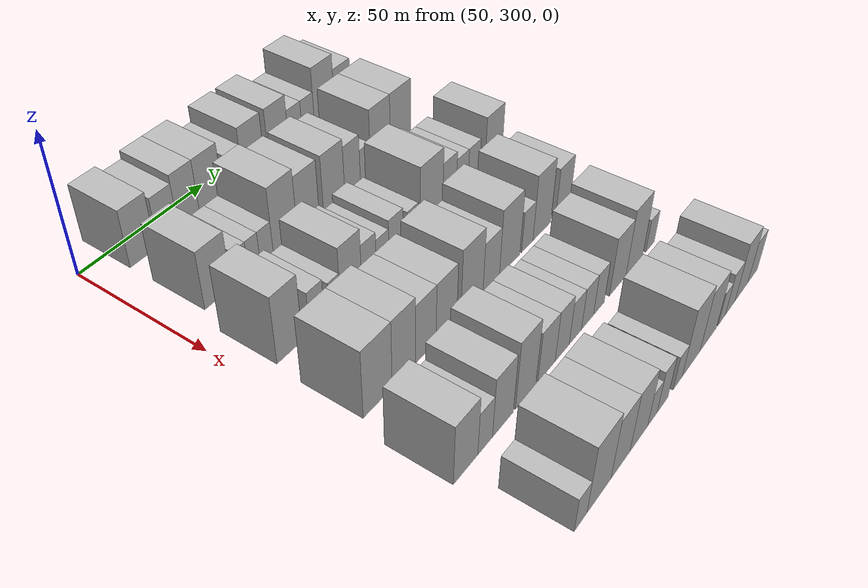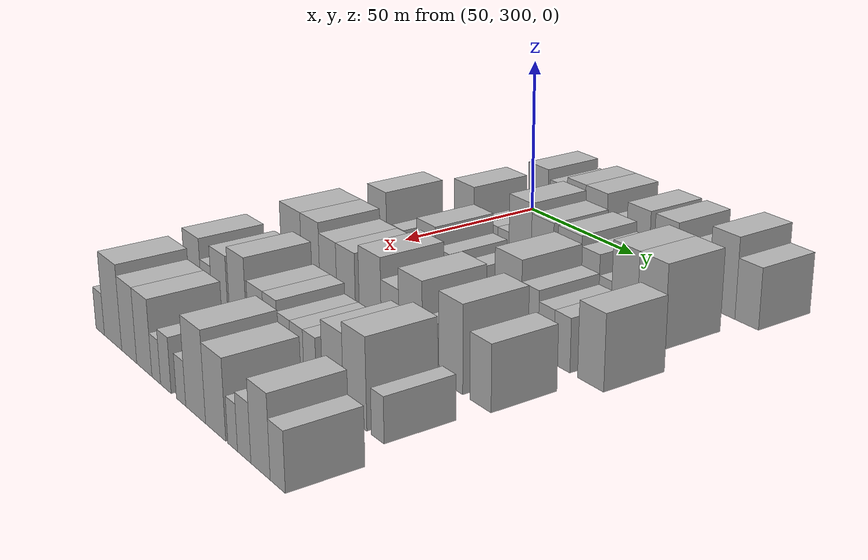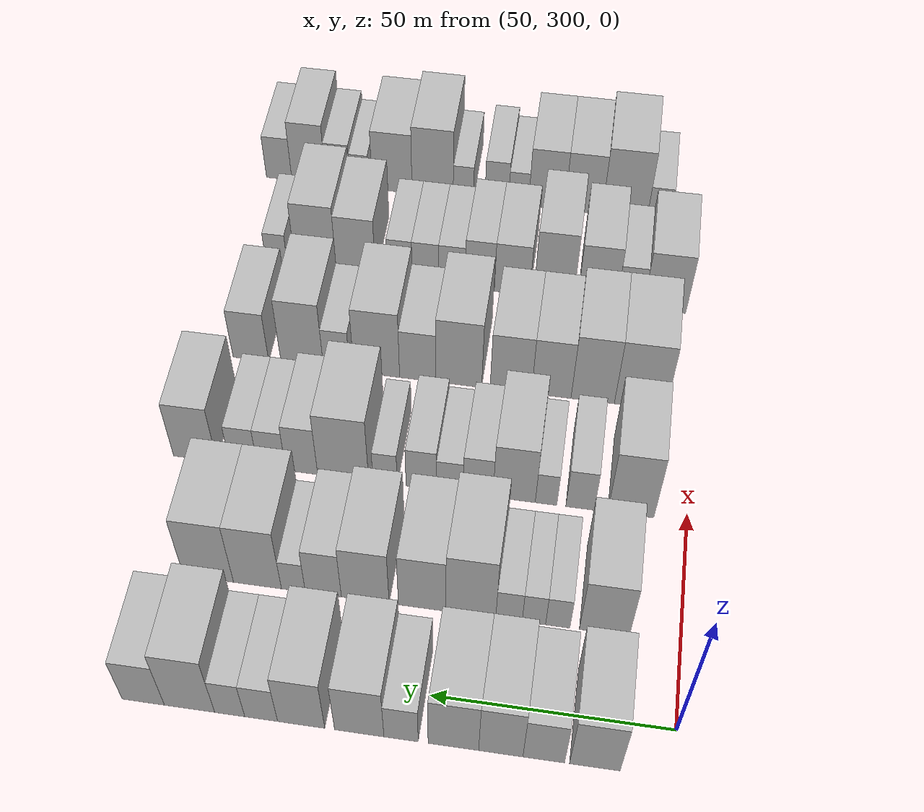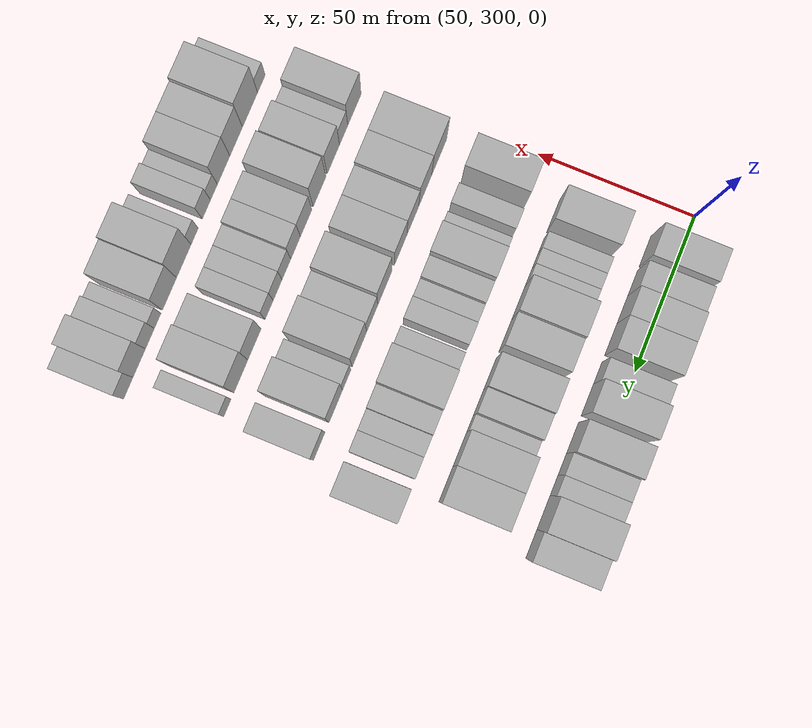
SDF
<sdf version="1.6">
 <world name="default">
  <model name="building_93">
   <static>1</static>
   <pose>50.0000 315.5452 0 0.000000 0.000000 0.000000</pose>
   <link name="link">
    <pose>0 0 10.50 0 0 0</pose>
    <collision name="collision"><geometry><box><size>20.0000 10.0082 21.0000</size></box></geometry></collision>
    <visual name="visual">
     <cast_shadows>0</cast_shadows>
     <geometry><box><size>20.0000 10.0082 21.0000</size></box></geometry>
     <material>
      <script>
       <uri>model://HANNAS_wall/materials/scripts</uri>
       <uri>model://HANNAS_wall/materials/textures</uri>
       <name>vrc/HANNAS_wall</name>
      </script>
     </material>
    </visual>
   </link>
  </model>
  <model name="building_94">
   <static>1</static>
   <pose>50.0000 325.6900 0 0.000000 0.000000 0.000000</pose>
   <link name="link">
    <pose>0 0 9.00 0 0 0</pose>
    <collision name="collision"><geometry><box><size>20.0000 8.2813 18.0000</size></box></geometry></collision>
    <visual name="visual">
     <cast_shadows>0</cast_shadows>
     <geometry><box><size>20.0000 8.2813 18.0000</size></box></geometry>
     <material>
      <script>
       <uri>model://HANNAS_wall/materials/scripts</uri>
       <uri>model://HANNAS_wall/materials/textures</uri>
       <name>vrc/HANNAS_wall</name>
      </script>
     </material>
    </visual>
   </link>
  </model>
  <model name="building_95">
   <static>1</static>
   <pose>50.0000 334.2727 0 0.000000 0.000000 0.000000</pose>
   <link name="link">
    <pose>0 0 10.50 0 0 0</pose>
    <collision name="collision"><geometry><box><size>20.0000 8.8841 21.0000</size></box></geometry></collision>
    <visual name="visual">
     <cast_shadows>0</cast_shadows>
     <geometry><box><size>20.0000 8.8841 21.0000</size></box></geometry>
     <material>
      <script>
       <uri>model://HANNAS_wall/materials/scripts</uri>
       <uri>model://HANNAS_wall/materials/textures</uri>
       <name>vrc/HANNAS_wall</name>
      </script>
     </material>
    </visual>
   </link>
  </model>
  <model name="building_96">
   <static>1</static>
   <pose>50.0000 343.7943 0 0.000000 0.000000 0.000000</pose>
   <link name="link">
    <pose>0 0 10.50 0 0 0</pose>
    <collision name="collision"><geometry><box><size>20.0000 10.1593 21.0000</size></box></geometry></collision>
    <visual name="visual">
     <cast_shadows>0</cast_shadows>
     <geometry><box><size>20.0000 10.1593 21.0000</size></box></geometry>
     <material>
      <script>
       <uri>model://HANNAS_wall/materials/scripts</uri>
       <uri>model://HANNAS_wall/materials/textures</uri>
       <name>vrc/HANNAS_wall</name>
      </script>
     </material>
    </visual>
   </link>
  </model>
  <model name="building_97">
   <static>1</static>
   <pose>50.0000 354.3434 0 0.000000 0.000000 0.000000</pose>
   <link name="link">
    <pose>0 0 7.50 0 0 0</pose>
    <collision name="collision"><geometry><box><size>20.0000 6.9388 15.0000</size></box></geometry></collision>
    <visual name="visual">
     <cast_shadows>0</cast_shadows>
     <geometry><box><size>20.0000 6.9388 15.0000</size></box></geometry>
     <material>
      <script>
       <uri>model://HANNAS_wall/materials/scripts</uri>
       <uri>model://HANNAS_wall/materials/textures</uri>
       <name>vrc/HANNAS_wall</name>
      </script>
     </material>
    </visual>
   </link>
  </model>
  <model name="building_98">
   <static>1</static>
   <pose>50.0000 362.8350 0 0.000000 0.000000 0.000000</pose>
   <link name="link">
    <pose>0 0 10.50 0 0 0</pose>
    <collision name="collision"><geometry><box><size>20.0000 10.0444 21.0000</size></box></geometry></collision>
    <visual name="visual">
     <cast_shadows>0</cast_shadows>
     <geometry><box><size>20.0000 10.0444 21.0000</size></box></geometry>
     <material>
      <script>
       <uri>model://HANNAS_wall/materials/scripts</uri>
       <uri>model://HANNAS_wall/materials/textures</uri>
       <name>vrc/HANNAS_wall</name>
      </script>
     </material>
    </visual>
   </link>
  </model>
  <model name="building_99">
   <static>1</static>
   <pose>50.0000 374.6957 0 0.000000 0.000000 0.000000</pose>
   <link name="link">
    <pose>0 0 10.50 0 0 0</pose>
    <collision name="collision"><geometry><box><size>20.0000 9.6771 21.0000</size></box></geometry></collision>
    <visual name="visual">
     <cast_shadows>0</cast_shadows>
     <geometry><box><size>20.0000 9.6771 21.0000</size></box></geometry>
     <material>
      <script>
       <uri>model://HANNAS_wall/materials/scripts</uri>
       <uri>model://HANNAS_wall/materials/textures</uri>
       <name>vrc/HANNAS_wall</name>
      </script>
     </material>
    </visual>
   </link>
  </model>
  <model name="building_100">
   <static>1</static>
   <pose>50.0000 382.9221 0 0.000000 0.000000 0.000000</pose>
   <link name="link">
    <pose>0 0 7.50 0 0 0</pose>
    <collision name="collision"><geometry><box><size>20.0000 6.7756 15.0000</size></box></geometry></collision>
    <visual name="visual">
     <cast_shadows>0</cast_shadows>
     <geometry><box><size>20.0000 6.7756 15.0000</size></box></geometry>
     <material>
      <script>
       <uri>model://HANNAS_wall/materials/scripts</uri>
       <uri>model://HANNAS_wall/materials/textures</uri>
       <name>vrc/HANNAS_wall</name>
      </script>
     </material>
    </visual>
   </link>
  </model>
  <model name="building_101">
   <static>1</static>
   <pose>50.0000 389.4220 0 0.000000 0.000000 0.000000</pose>
   <link name="link">
    <pose>0 0 7.50 0 0 0</pose>
    <collision name="collision"><geometry><box><size>20.0000 6.2241 15.0000</size></box></geometry></collision>
    <visual name="visual">
     <cast_shadows>0</cast_shadows>
     <geometry><box><size>20.0000 6.2241 15.0000</size></box></geometry>
     <material>
      <script>
       <uri>model://HANNAS_wall/materials/scripts</uri>
       <uri>model://HANNAS_wall/materials/textures</uri>
       <name>vrc/HANNAS_wall</name>
      </script>
     </material>
    </visual>
   </link>
  </model>
  <model name="building_102">
   <static>1</static>
   <pose>50.0000 397.7597 0 0.000000 0.000000 0.000000</pose>
   <link name="link">
    <pose>0 0 12.00 0 0 0</pose>
    <collision name="collision"><geometry><box><size>20.0000 10.4512 24.0000</size></box></geometry></collision>
    <visual name="visual">
     <cast_shadows>0</cast_shadows>
     <geometry><box><size>20.0000 10.4512 24.0000</size></box></geometry>
     <material>
      <script>
       <uri>model://HANNAS_wall/materials/scripts</uri>
       <uri>model://HANNAS_wall/materials/textures</uri>
       <name>vrc/HANNAS_wall</name>
      </script>
     </material>
    </visual>
   </link>
  </model>
  <model name="building_103">
   <static>1</static>
   <pose>50.0000 407.3971 0 0.000000 0.000000 0.000000</pose>
   <link name="link">
    <pose>0 0 9.00 0 0 0</pose>
    <collision name="collision"><geometry><box><size>20.0000 8.8237 18.0000</size></box></geometry></collision>
    <visual name="visual">
     <cast_shadows>0</cast_shadows>
     <geometry><box><size>20.0000 8.8237 18.0000</size></box></geometry>
     <material>
      <script>
       <uri>model://HANNAS_wall/materials/scripts</uri>
       <uri>model://HANNAS_wall/materials/textures</uri>
       <name>vrc/HANNAS_wall</name>
      </script>
     </material>
    </visual>
   </link>
  </model>
  <model name="building_215">
   <static>1</static>
   <pose>79.0000 315.9607 0 0.000000 0.000000 0.000000</pose>
   <link name="link">
    <pose>0 0 10.50 0 0 0</pose>
    <collision name="collision"><geometry><box><size>20.0000 10.4557 21.0000</size></box></geometry></collision>
    <visual name="visual">
     <cast_shadows>0</cast_shadows>
     <geometry><box><size>20.0000 10.4557 21.0000</size></box></geometry>
     <material>
      <script>
       <uri>model://HANNAS_wall/materials/scripts</uri>
       <uri>model://HANNAS_wall/materials/textures</uri>
       <name>vrc/HANNAS_wall</name>
      </script>
     </material>
    </visual>
   </link>
  </model>
  <model name="building_216">
   <static>1</static>
   <pose>79.0000 325.7567 0 0.000000 0.000000 0.000000</pose>
   <link name="link">
    <pose>0 0 6.00 0 0 0</pose>
    <collision name="collision"><geometry><box><size>20.0000 5.1362 12.0000</size></box></geometry></collision>
    <visual name="visual">
     <cast_shadows>0</cast_shadows>
     <geometry><box><size>20.0000 5.1362 12.0000</size></box></geometry>
     <material>
      <script>
       <uri>model://HANNAS_wall/materials/scripts</uri>
       <uri>model://HANNAS_wall/materials/textures</uri>
       <name>vrc/HANNAS_wall</name>
      </script>
     </material>
    </visual>
   </link>
  </model>
  <model name="building_217">
   <static>1</static>
   <pose>79.0000 330.7966 0 0.000000 0.000000 0.000000</pose>
   <link name="link">
    <pose>0 0 6.00 0 0 0</pose>
    <collision name="collision"><geometry><box><size>20.0000 4.9435 12.0000</size></box></geometry></collision>
    <visual name="visual">
     <cast_shadows>0</cast_shadows>
     <geometry><box><size>20.0000 4.9435 12.0000</size></box></geometry>
     <material>
      <script>
       <uri>model://HANNAS_wall/materials/scripts</uri>
       <uri>model://HANNAS_wall/materials/textures</uri>
       <name>vrc/HANNAS_wall</name>
      </script>
     </material>
    </visual>
   </link>
  </model>
  <model name="building_218">
   <static>1</static>
   <pose>79.0000 336.0639 0 0.000000 0.000000 0.000000</pose>
   <link name="link">
    <pose>0 0 6.00 0 0 0</pose>
    <collision name="collision"><geometry><box><size>20.0000 5.5912 12.0000</size></box></geometry></collision>
    <visual name="visual">
     <cast_shadows>0</cast_shadows>
     <geometry><box><size>20.0000 5.5912 12.0000</size></box></geometry>
     <material>
      <script>
       <uri>model://HANNAS_wall/materials/scripts</uri>
       <uri>model://HANNAS_wall/materials/textures</uri>
       <name>vrc/HANNAS_wall</name>
      </script>
     </material>
    </visual>
   </link>
  </model>
  <model name="building_219">
   <static>1</static>
   <pose>79.0000 344.2094 0 0.000000 0.000000 0.000000</pose>
   <link name="link">
    <pose>0 0 12.00 0 0 0</pose>
    <collision name="collision"><geometry><box><size>20.0000 10.6997 24.0000</size></box></geometry></collision>
    <visual name="visual">
     <cast_shadows>0</cast_shadows>
     <geometry><box><size>20.0000 10.6997 24.0000</size></box></geometry>
     <material>
      <script>
       <uri>model://HANNAS_wall/materials/scripts</uri>
       <uri>model://HANNAS_wall/materials/textures</uri>
       <name>vrc/HANNAS_wall</name>
      </script>
     </material>
    </visual>
   </link>
  </model>
  <model name="building_220">
   <static>1</static>
   <pose>79.0000 354.5981 0 0.000000 0.000000 0.000000</pose>
   <link name="link">
    <pose>0 0 10.50 0 0 0</pose>
    <collision name="collision"><geometry><box><size>20.0000 10.0776 21.0000</size></box></geometry></collision>
    <visual name="visual">
     <cast_shadows>0</cast_shadows>
     <geometry><box><size>20.0000 10.0776 21.0000</size></box></geometry>
     <material>
      <script>
       <uri>model://HANNAS_wall/materials/scripts</uri>
       <uri>model://HANNAS_wall/materials/textures</uri>
       <name>vrc/HANNAS_wall</name>
      </script>
     </material>
    </visual>
   </link>
  </model>
  <model name="building_221">
   <static>1</static>
   <pose>79.0000 366.7834 0 0.000000 0.000000 0.000000</pose>
   <link name="link">
    <pose>0 0 10.50 0 0 0</pose>
    <collision name="collision"><geometry><box><size>20.0000 10.2931 21.0000</size></box></geometry></collision>
    <visual name="visual">
     <cast_shadows>0</cast_shadows>
     <geometry><box><size>20.0000 10.2931 21.0000</size></box></geometry>
     <material>
      <script>
       <uri>model://HANNAS_wall/materials/scripts</uri>
       <uri>model://HANNAS_wall/materials/textures</uri>
       <name>vrc/HANNAS_wall</name>
      </script>
     </material>
    </visual>
   </link>
  </model>
  <model name="building_222">
   <static>1</static>
   <pose>79.0000 375.8304 0 0.000000 0.000000 0.000000</pose>
   <link name="link">
    <pose>0 0 9.00 0 0 0</pose>
    <collision name="collision"><geometry><box><size>20.0000 7.8008 18.0000</size></box></geometry></collision>
    <visual name="visual">
     <cast_shadows>0</cast_shadows>
     <geometry><box><size>20.0000 7.8008 18.0000</size></box></geometry>
     <material>
      <script>
       <uri>model://HANNAS_wall/materials/scripts</uri>
       <uri>model://HANNAS_wall/materials/textures</uri>
       <name>vrc/HANNAS_wall</name>
      </script>
     </material>
    </visual>
   </link>
  </model>
  <model name="building_223">
   <static>1</static>
   <pose>79.0000 382.3378 0 0.000000 0.000000 0.000000</pose>
   <link name="link">
    <pose>0 0 6.00 0 0 0</pose>
    <collision name="collision"><geometry><box><size>20.0000 5.2142 12.0000</size></box></geometry></collision>
    <visual name="visual">
     <cast_shadows>0</cast_shadows>
     <geometry><box><size>20.0000 5.2142 12.0000</size></box></geometry>
     <material>
      <script>
       <uri>model://HANNAS_wall/materials/scripts</uri>
       <uri>model://HANNAS_wall/materials/textures</uri>
       <name>vrc/HANNAS_wall</name>
      </script>
     </material>
    </visual>
   </link>
  </model>
  <model name="building_224">
   <static>1</static>
   <pose>79.0000 390.1889 0 0.000000 0.000000 0.000000</pose>
   <link name="link">
    <pose>0 0 12.00 0 0 0</pose>
    <collision name="collision"><geometry><box><size>20.0000 10.4879 24.0000</size></box></geometry></collision>
    <visual name="visual">
     <cast_shadows>0</cast_shadows>
     <geometry><box><size>20.0000 10.4879 24.0000</size></box></geometry>
     <material>
      <script>
       <uri>model://HANNAS_wall/materials/scripts</uri>
       <uri>model://HANNAS_wall/materials/textures</uri>
       <name>vrc/HANNAS_wall</name>
      </script>
     </material>
    </visual>
   </link>
  </model>
  <model name="building_225">
   <static>1</static>
   <pose>79.0000 400.9371 0 0.000000 0.000000 0.000000</pose>
   <link name="link">
    <pose>0 0 12.00 0 0 0</pose>
    <collision name="collision"><geometry><box><size>20.0000 11.0085 24.0000</size></box></geometry></collision>
    <visual name="visual">
     <cast_shadows>0</cast_shadows>
     <geometry><box><size>20.0000 11.0085 24.0000</size></box></geometry>
     <material>
      <script>
       <uri>model://HANNAS_wall/materials/scripts</uri>
       <uri>model://HANNAS_wall/materials/textures</uri>
       <name>vrc/HANNAS_wall</name>
      </script>
     </material>
    </visual>
   </link>
  </model>
  <model name="building_333">
   <static>1</static>
   <pose>108.0000 312.4085 0 0.000000 0.000000 0.000000</pose>
   <link name="link">
    <pose>0 0 12.00 0 0 0</pose>
    <collision name="collision"><geometry><box><size>20.0000 10.1670 24.0000</size></box></geometry></collision>
    <visual name="visual">
     <cast_shadows>0</cast_shadows>
     <geometry><box><size>20.0000 10.1670 24.0000</size></box></geometry>
     <material>
      <script>
       <uri>model://HANNAS_wall/materials/scripts</uri>
       <uri>model://HANNAS_wall/materials/textures</uri>
       <name>vrc/HANNAS_wall</name>
      </script>
     </material>
    </visual>
   </link>
  </model>
  <model name="building_334">
   <static>1</static>
   <pose>108.0000 323.6455 0 0.000000 0.000000 0.000000</pose>
   <link name="link">
    <pose>0 0 7.50 0 0 0</pose>
    <collision name="collision"><geometry><box><size>20.0000 6.3069 15.0000</size></box></geometry></collision>
    <visual name="visual">
     <cast_shadows>0</cast_shadows>
     <geometry><box><size>20.0000 6.3069 15.0000</size></box></geometry>
     <material>
      <script>
       <uri>model://HANNAS_wall/materials/scripts</uri>
       <uri>model://HANNAS_wall/materials/textures</uri>
       <name>vrc/HANNAS_wall</name>
      </script>
     </material>
    </visual>
   </link>
  </model>
  <model name="building_335">
   <static>1</static>
   <pose>108.0000 331.2059 0 0.000000 0.000000 0.000000</pose>
   <link name="link">
    <pose>0 0 6.00 0 0 0</pose>
    <collision name="collision"><geometry><box><size>20.0000 4.8141 12.0000</size></box></geometry></collision>
    <visual name="visual">
     <cast_shadows>0</cast_shadows>
     <geometry><box><size>20.0000 4.8141 12.0000</size></box></geometry>
     <material>
      <script>
       <uri>model://HANNAS_wall/materials/scripts</uri>
       <uri>model://HANNAS_wall/materials/textures</uri>
       <name>vrc/HANNAS_wall</name>
      </script>
     </material>
    </visual>
   </link>
  </model>
  <model name="building_336">
   <static>1</static>
   <pose>108.0000 338.3489 0 0.000000 0.000000 0.000000</pose>
   <link name="link">
    <pose>0 0 10.50 0 0 0</pose>
    <collision name="collision"><geometry><box><size>20.0000 9.4719 21.0000</size></box></geometry></collision>
    <visual name="visual">
     <cast_shadows>0</cast_shadows>
     <geometry><box><size>20.0000 9.4719 21.0000</size></box></geometry>
     <material>
      <script>
       <uri>model://HANNAS_wall/materials/scripts</uri>
       <uri>model://HANNAS_wall/materials/textures</uri>
       <name>vrc/HANNAS_wall</name>
      </script>
     </material>
    </visual>
   </link>
  </model>
  <model name="building_337">
   <static>1</static>
   <pose>108.0000 346.4633 0 0.000000 0.000000 0.000000</pose>
   <link name="link">
    <pose>0 0 7.50 0 0 0</pose>
    <collision name="collision"><geometry><box><size>20.0000 6.7568 15.0000</size></box></geometry></collision>
    <visual name="visual">
     <cast_shadows>0</cast_shadows>
     <geometry><box><size>20.0000 6.7568 15.0000</size></box></geometry>
     <material>
      <script>
       <uri>model://HANNAS_wall/materials/scripts</uri>
       <uri>model://HANNAS_wall/materials/textures</uri>
       <name>vrc/HANNAS_wall</name>
      </script>
     </material>
    </visual>
   </link>
  </model>
  <model name="building_338">
   <static>1</static>
   <pose>108.0000 352.8223 0 0.000000 0.000000 0.000000</pose>
   <link name="link">
    <pose>0 0 6.00 0 0 0</pose>
    <collision name="collision"><geometry><box><size>20.0000 5.9613 12.0000</size></box></geometry></collision>
    <visual name="visual">
     <cast_shadows>0</cast_shadows>
     <geometry><box><size>20.0000 5.9613 12.0000</size></box></geometry>
     <material>
      <script>
       <uri>model://HANNAS_wall/materials/scripts</uri>
       <uri>model://HANNAS_wall/materials/textures</uri>
       <name>vrc/HANNAS_wall</name>
      </script>
     </material>
    </visual>
   </link>
  </model>
  <model name="building_339">
   <static>1</static>
   <pose>108.0000 359.2395 0 0.000000 0.000000 0.000000</pose>
   <link name="link">
    <pose>0 0 7.50 0 0 0</pose>
    <collision name="collision"><geometry><box><size>20.0000 6.8731 15.0000</size></box></geometry></collision>
    <visual name="visual">
     <cast_shadows>0</cast_shadows>
     <geometry><box><size>20.0000 6.8731 15.0000</size></box></geometry>
     <material>
      <script>
       <uri>model://HANNAS_wall/materials/scripts</uri>
       <uri>model://HANNAS_wall/materials/textures</uri>
       <name>vrc/HANNAS_wall</name>
      </script>
     </material>
    </visual>
   </link>
  </model>
  <model name="building_340">
   <static>1</static>
   <pose>108.0000 367.4224 0 0.000000 0.000000 0.000000</pose>
   <link name="link">
    <pose>0 0 6.00 0 0 0</pose>
    <collision name="collision"><geometry><box><size>20.0000 5.4927 12.0000</size></box></geometry></collision>
    <visual name="visual">
     <cast_shadows>0</cast_shadows>
     <geometry><box><size>20.0000 5.4927 12.0000</size></box></geometry>
     <material>
      <script>
       <uri>model://HANNAS_wall/materials/scripts</uri>
       <uri>model://HANNAS_wall/materials/textures</uri>
       <name>vrc/HANNAS_wall</name>
      </script>
     </material>
    </visual>
   </link>
  </model>
  <model name="building_341">
   <static>1</static>
   <pose>108.0000 376.9942 0 0.000000 0.000000 0.000000</pose>
   <link name="link">
    <pose>0 0 12.00 0 0 0</pose>
    <collision name="collision"><geometry><box><size>20.0000 11.6511 24.0000</size></box></geometry></collision>
    <visual name="visual">
     <cast_shadows>0</cast_shadows>
     <geometry><box><size>20.0000 11.6511 24.0000</size></box></geometry>
     <material>
      <script>
       <uri>model://HANNAS_wall/materials/scripts</uri>
       <uri>model://HANNAS_wall/materials/textures</uri>
       <name>vrc/HANNAS_wall</name>
      </script>
     </material>
    </visual>
   </link>
  </model>
  <model name="building_342">
   <static>1</static>
   <pose>108.0000 386.4599 0 0.000000 0.000000 0.000000</pose>
   <link name="link">
    <pose>0 0 9.00 0 0 0</pose>
    <collision name="collision"><geometry><box><size>20.0000 7.2802 18.0000</size></box></geometry></collision>
    <visual name="visual">
     <cast_shadows>0</cast_shadows>
     <geometry><box><size>20.0000 7.2802 18.0000</size></box></geometry>
     <material>
      <script>
       <uri>model://HANNAS_wall/materials/scripts</uri>
       <uri>model://HANNAS_wall/materials/textures</uri>
       <name>vrc/HANNAS_wall</name>
      </script>
     </material>
    </visual>
   </link>
  </model>
  <model name="building_343">
   <static>1</static>
   <pose>108.0000 393.3609 0 0.000000 0.000000 0.000000</pose>
   <link name="link">
    <pose>0 0 7.50 0 0 0</pose>
    <collision name="collision"><geometry><box><size>20.0000 6.5218 15.0000</size></box></geometry></collision>
    <visual name="visual">
     <cast_shadows>0</cast_shadows>
     <geometry><box><size>20.0000 6.5218 15.0000</size></box></geometry>
     <material>
      <script>
       <uri>model://HANNAS_wall/materials/scripts</uri>
       <uri>model://HANNAS_wall/materials/textures</uri>
       <name>vrc/HANNAS_wall</name>
      </script>
     </material>
    </visual>
   </link>
  </model>
  <model name="building_344">
   <static>1</static>
   <pose>108.0000 399.8630 0 0.000000 0.000000 0.000000</pose>
   <link name="link">
    <pose>0 0 7.50 0 0 0</pose>
    <collision name="collision"><geometry><box><size>20.0000 6.4825 15.0000</size></box></geometry></collision>
    <visual name="visual">
     <cast_shadows>0</cast_shadows>
     <geometry><box><size>20.0000 6.4825 15.0000</size></box></geometry>
     <material>
      <script>
       <uri>model://HANNAS_wall/materials/scripts</uri>
       <uri>model://HANNAS_wall/materials/textures</uri>
       <name>vrc/HANNAS_wall</name>
      </script>
     </material>
    </visual>
   </link>
  </model>
  <model name="building_345">
   <static>1</static>
   <pose>108.0000 411.1300 0 0.000000 0.000000 0.000000</pose>
   <link name="link">
    <pose>0 0 10.50 0 0 0</pose>
    <collision name="collision"><geometry><box><size>20.0000 10.0515 21.0000</size></box></geometry></collision>
    <visual name="visual">
     <cast_shadows>0</cast_shadows>
     <geometry><box><size>20.0000 10.0515 21.0000</size></box></geometry>
     <material>
      <script>
       <uri>model://HANNAS_wall/materials/scripts</uri>
       <uri>model://HANNAS_wall/materials/textures</uri>
       <name>vrc/HANNAS_wall</name>
      </script>
     </material>
    </visual>
   </link>
  </model>
  <model name="building_447">
   <static>1</static>
   <pose>137.0000 312.2363 0 0.000000 0.000000 0.000000</pose>
   <link name="link">
    <pose>0 0 12.00 0 0 0</pose>
    <collision name="collision"><geometry><box><size>20.0000 11.9611 24.0000</size></box></geometry></collision>
    <visual name="visual">
     <cast_shadows>0</cast_shadows>
     <geometry><box><size>20.0000 11.9611 24.0000</size></box></geometry>
     <material>
      <script>
       <uri>model://HANNAS_wall/materials/scripts</uri>
       <uri>model://HANNAS_wall/materials/textures</uri>
       <name>vrc/HANNAS_wall</name>
      </script>
     </material>
    </visual>
   </link>
  </model>
  <model name="building_448">
   <static>1</static>
   <pose>137.0000 323.2850 0 0.000000 0.000000 0.000000</pose>
   <link name="link">
    <pose>0 0 12.00 0 0 0</pose>
    <collision name="collision"><geometry><box><size>20.0000 10.1364 24.0000</size></box></geometry></collision>
    <visual name="visual">
     <cast_shadows>0</cast_shadows>
     <geometry><box><size>20.0000 10.1364 24.0000</size></box></geometry>
     <material>
      <script>
       <uri>model://HANNAS_wall/materials/scripts</uri>
       <uri>model://HANNAS_wall/materials/textures</uri>
       <name>vrc/HANNAS_wall</name>
      </script>
     </material>
    </visual>
   </link>
  </model>
  <model name="building_449">
   <static>1</static>
   <pose>137.0000 332.9800 0 0.000000 0.000000 0.000000</pose>
   <link name="link">
    <pose>0 0 10.50 0 0 0</pose>
    <collision name="collision"><geometry><box><size>20.0000 9.2535 21.0000</size></box></geometry></collision>
    <visual name="visual">
     <cast_shadows>0</cast_shadows>
     <geometry><box><size>20.0000 9.2535 21.0000</size></box></geometry>
     <material>
      <script>
       <uri>model://HANNAS_wall/materials/scripts</uri>
       <uri>model://HANNAS_wall/materials/textures</uri>
       <name>vrc/HANNAS_wall</name>
      </script>
     </material>
    </visual>
   </link>
  </model>
  <model name="building_450">
   <static>1</static>
   <pose>137.0000 342.4957 0 0.000000 0.000000 0.000000</pose>
   <link name="link">
    <pose>0 0 10.50 0 0 0</pose>
    <collision name="collision"><geometry><box><size>20.0000 9.7778 21.0000</size></box></geometry></collision>
    <visual name="visual">
     <cast_shadows>0</cast_shadows>
     <geometry><box><size>20.0000 9.7778 21.0000</size></box></geometry>
     <material>
      <script>
       <uri>model://HANNAS_wall/materials/scripts</uri>
       <uri>model://HANNAS_wall/materials/textures</uri>
       <name>vrc/HANNAS_wall</name>
      </script>
     </material>
    </visual>
   </link>
  </model>
  <model name="building_451">
   <static>1</static>
   <pose>137.0000 354.8757 0 0.000000 0.000000 0.000000</pose>
   <link name="link">
    <pose>0 0 12.00 0 0 0</pose>
    <collision name="collision"><geometry><box><size>20.0000 10.9823 24.0000</size></box></geometry></collision>
    <visual name="visual">
     <cast_shadows>0</cast_shadows>
     <geometry><box><size>20.0000 10.9823 24.0000</size></box></geometry>
     <material>
      <script>
       <uri>model://HANNAS_wall/materials/scripts</uri>
       <uri>model://HANNAS_wall/materials/textures</uri>
       <name>vrc/HANNAS_wall</name>
      </script>
     </material>
    </visual>
   </link>
  </model>
  <model name="building_452">
   <static>1</static>
   <pose>137.0000 364.6309 0 0.000000 0.000000 0.000000</pose>
   <link name="link">
    <pose>0 0 9.00 0 0 0</pose>
    <collision name="collision"><geometry><box><size>20.0000 8.5280 18.0000</size></box></geometry></collision>
    <visual name="visual">
     <cast_shadows>0</cast_shadows>
     <geometry><box><size>20.0000 8.5280 18.0000</size></box></geometry>
     <material>
      <script>
       <uri>model://HANNAS_wall/materials/scripts</uri>
       <uri>model://HANNAS_wall/materials/textures</uri>
       <name>vrc/HANNAS_wall</name>
      </script>
     </material>
    </visual>
   </link>
  </model>
  <model name="building_453">
   <static>1</static>
   <pose>137.0000 374.3657 0 0.000000 0.000000 0.000000</pose>
   <link name="link">
    <pose>0 0 12.00 0 0 0</pose>
    <collision name="collision"><geometry><box><size>20.0000 10.9418 24.0000</size></box></geometry></collision>
    <visual name="visual">
     <cast_shadows>0</cast_shadows>
     <geometry><box><size>20.0000 10.9418 24.0000</size></box></geometry>
     <material>
      <script>
       <uri>model://HANNAS_wall/materials/scripts</uri>
       <uri>model://HANNAS_wall/materials/textures</uri>
       <name>vrc/HANNAS_wall</name>
      </script>
     </material>
    </visual>
   </link>
  </model>
  <model name="building_454">
   <static>1</static>
   <pose>137.0000 384.0002 0 0.000000 0.000000 0.000000</pose>
   <link name="link">
    <pose>0 0 7.50 0 0 0</pose>
    <collision name="collision"><geometry><box><size>20.0000 6.3272 15.0000</size></box></geometry></collision>
    <visual name="visual">
     <cast_shadows>0</cast_shadows>
     <geometry><box><size>20.0000 6.3272 15.0000</size></box></geometry>
     <material>
      <script>
       <uri>model://HANNAS_wall/materials/scripts</uri>
       <uri>model://HANNAS_wall/materials/textures</uri>
       <name>vrc/HANNAS_wall</name>
      </script>
     </material>
    </visual>
   </link>
  </model>
  <model name="building_455">
   <static>1</static>
   <pose>137.0000 392.2985 0 0.000000 0.000000 0.000000</pose>
   <link name="link">
    <pose>0 0 12.00 0 0 0</pose>
    <collision name="collision"><geometry><box><size>20.0000 10.2693 24.0000</size></box></geometry></collision>
    <visual name="visual">
     <cast_shadows>0</cast_shadows>
     <geometry><box><size>20.0000 10.2693 24.0000</size></box></geometry>
     <material>
      <script>
       <uri>model://HANNAS_wall/materials/scripts</uri>
       <uri>model://HANNAS_wall/materials/textures</uri>
       <name>vrc/HANNAS_wall</name>
      </script>
     </material>
    </visual>
   </link>
  </model>
  <model name="building_456">
   <static>1</static>
   <pose>137.0000 404.7795 0 0.000000 0.000000 0.000000</pose>
   <link name="link">
    <pose>0 0 9.00 0 0 0</pose>
    <collision name="collision"><geometry><box><size>20.0000 8.6927 18.0000</size></box></geometry></collision>
    <visual name="visual">
     <cast_shadows>0</cast_shadows>
     <geometry><box><size>20.0000 8.6927 18.0000</size></box></geometry>
     <material>
      <script>
       <uri>model://HANNAS_wall/materials/scripts</uri>
       <uri>model://HANNAS_wall/materials/textures</uri>
       <name>vrc/HANNAS_wall</name>
      </script>
     </material>
    </visual>
   </link>
  </model>
  <model name="building_563">
   <static>1</static>
   <pose>166.0000 308.1967 0 0.000000 0.000000 0.000000</pose>
   <link name="link">
    <pose>0 0 10.50 0 0 0</pose>
    <collision name="collision"><geometry><box><size>20.0000 10.3828 21.0000</size></box></geometry></collision>
    <visual name="visual">
     <cast_shadows>0</cast_shadows>
     <geometry><box><size>20.0000 10.3828 21.0000</size></box></geometry>
     <material>
      <script>
       <uri>model://HANNAS_wall/materials/scripts</uri>
       <uri>model://HANNAS_wall/materials/textures</uri>
       <name>vrc/HANNAS_wall</name>
      </script>
     </material>
    </visual>
   </link>
  </model>
  <model name="building_564">
   <static>1</static>
   <pose>166.0000 316.6407 0 0.000000 0.000000 0.000000</pose>
   <link name="link">
    <pose>0 0 7.50 0 0 0</pose>
    <collision name="collision"><geometry><box><size>20.0000 6.5051 15.0000</size></box></geometry></collision>
    <visual name="visual">
     <cast_shadows>0</cast_shadows>
     <geometry><box><size>20.0000 6.5051 15.0000</size></box></geometry>
     <material>
      <script>
       <uri>model://HANNAS_wall/materials/scripts</uri>
       <uri>model://HANNAS_wall/materials/textures</uri>
       <name>vrc/HANNAS_wall</name>
      </script>
     </material>
    </visual>
   </link>
  </model>
  <model name="building_565">
   <static>1</static>
   <pose>166.0000 324.6711 0 0.000000 0.000000 0.000000</pose>
   <link name="link">
    <pose>0 0 10.50 0 0 0</pose>
    <collision name="collision"><geometry><box><size>20.0000 9.5557 21.0000</size></box></geometry></collision>
    <visual name="visual">
     <cast_shadows>0</cast_shadows>
     <geometry><box><size>20.0000 9.5557 21.0000</size></box></geometry>
     <material>
      <script>
       <uri>model://HANNAS_wall/materials/scripts</uri>
       <uri>model://HANNAS_wall/materials/textures</uri>
       <name>vrc/HANNAS_wall</name>
      </script>
     </material>
    </visual>
   </link>
  </model>
  <model name="building_566">
   <static>1</static>
   <pose>166.0000 335.3377 0 0.000000 0.000000 0.000000</pose>
   <link name="link">
    <pose>0 0 12.00 0 0 0</pose>
    <collision name="collision"><geometry><box><size>20.0000 9.7774 24.0000</size></box></geometry></collision>
    <visual name="visual">
     <cast_shadows>0</cast_shadows>
     <geometry><box><size>20.0000 9.7774 24.0000</size></box></geometry>
     <material>
      <script>
       <uri>model://HANNAS_wall/materials/scripts</uri>
       <uri>model://HANNAS_wall/materials/textures</uri>
       <name>vrc/HANNAS_wall</name>
      </script>
     </material>
    </visual>
   </link>
  </model>
  <model name="building_567">
   <static>1</static>
   <pose>166.0000 345.6106 0 0.000000 0.000000 0.000000</pose>
   <link name="link">
    <pose>0 0 9.00 0 0 0</pose>
    <collision name="collision"><geometry><box><size>20.0000 8.7684 18.0000</size></box></geometry></collision>
    <visual name="visual">
     <cast_shadows>0</cast_shadows>
     <geometry><box><size>20.0000 8.7684 18.0000</size></box></geometry>
     <material>
      <script>
       <uri>model://HANNAS_wall/materials/scripts</uri>
       <uri>model://HANNAS_wall/materials/textures</uri>
       <name>vrc/HANNAS_wall</name>
      </script>
     </material>
    </visual>
   </link>
  </model>
  <model name="building_568">
   <static>1</static>
   <pose>166.0000 353.6458 0 0.000000 0.000000 0.000000</pose>
   <link name="link">
    <pose>0 0 9.00 0 0 0</pose>
    <collision name="collision"><geometry><box><size>20.0000 7.3021 18.0000</size></box></geometry></collision>
    <visual name="visual">
     <cast_shadows>0</cast_shadows>
     <geometry><box><size>20.0000 7.3021 18.0000</size></box></geometry>
     <material>
      <script>
       <uri>model://HANNAS_wall/materials/scripts</uri>
       <uri>model://HANNAS_wall/materials/textures</uri>
       <name>vrc/HANNAS_wall</name>
      </script>
     </material>
    </visual>
   </link>
  </model>
  <model name="building_569">
   <static>1</static>
   <pose>166.0000 360.6120 0 0.000000 0.000000 0.000000</pose>
   <link name="link">
    <pose>0 0 7.50 0 0 0</pose>
    <collision name="collision"><geometry><box><size>20.0000 6.6303 15.0000</size></box></geometry></collision>
    <visual name="visual">
     <cast_shadows>0</cast_shadows>
     <geometry><box><size>20.0000 6.6303 15.0000</size></box></geometry>
     <material>
      <script>
       <uri>model://HANNAS_wall/materials/scripts</uri>
       <uri>model://HANNAS_wall/materials/textures</uri>
       <name>vrc/HANNAS_wall</name>
      </script>
     </material>
    </visual>
   </link>
  </model>
  <model name="building_570">
   <static>1</static>
   <pose>166.0000 367.2481 0 0.000000 0.000000 0.000000</pose>
   <link name="link">
    <pose>0 0 7.50 0 0 0</pose>
    <collision name="collision"><geometry><box><size>20.0000 6.6420 15.0000</size></box></geometry></collision>
    <visual name="visual">
     <cast_shadows>0</cast_shadows>
     <geometry><box><size>20.0000 6.6420 15.0000</size></box></geometry>
     <material>
      <script>
       <uri>model://HANNAS_wall/materials/scripts</uri>
       <uri>model://HANNAS_wall/materials/textures</uri>
       <name>vrc/HANNAS_wall</name>
      </script>
     </material>
    </visual>
   </link>
  </model>
  <model name="building_571">
   <static>1</static>
   <pose>166.0000 373.6368 0 0.000000 0.000000 0.000000</pose>
   <link name="link">
    <pose>0 0 7.50 0 0 0</pose>
    <collision name="collision"><geometry><box><size>20.0000 6.1354 15.0000</size></box></geometry></collision>
    <visual name="visual">
     <cast_shadows>0</cast_shadows>
     <geometry><box><size>20.0000 6.1354 15.0000</size></box></geometry>
     <material>
      <script>
       <uri>model://HANNAS_wall/materials/scripts</uri>
       <uri>model://HANNAS_wall/materials/textures</uri>
       <name>vrc/HANNAS_wall</name>
      </script>
     </material>
    </visual>
   </link>
  </model>
  <model name="building_572">
   <static>1</static>
   <pose>166.0000 384.6266 0 0.000000 0.000000 0.000000</pose>
   <link name="link">
    <pose>0 0 10.50 0 0 0</pose>
    <collision name="collision"><geometry><box><size>20.0000 9.8442 21.0000</size></box></geometry></collision>
    <visual name="visual">
     <cast_shadows>0</cast_shadows>
     <geometry><box><size>20.0000 9.8442 21.0000</size></box></geometry>
     <material>
      <script>
       <uri>model://HANNAS_wall/materials/scripts</uri>
       <uri>model://HANNAS_wall/materials/textures</uri>
       <name>vrc/HANNAS_wall</name>
      </script>
     </material>
    </visual>
   </link>
  </model>
  <model name="building_573">
   <static>1</static>
   <pose>166.0000 394.7525 0 0.000000 0.000000 0.000000</pose>
   <link name="link">
    <pose>0 0 12.00 0 0 0</pose>
    <collision name="collision"><geometry><box><size>20.0000 10.4075 24.0000</size></box></geometry></collision>
    <visual name="visual">
     <cast_shadows>0</cast_shadows>
     <geometry><box><size>20.0000 10.4075 24.0000</size></box></geometry>
     <material>
      <script>
       <uri>model://HANNAS_wall/materials/scripts</uri>
       <uri>model://HANNAS_wall/materials/textures</uri>
       <name>vrc/HANNAS_wall</name>
      </script>
     </material>
    </visual>
   </link>
  </model>
  <model name="building_574">
   <static>1</static>
   <pose>166.0000 404.6862 0 0.000000 0.000000 0.000000</pose>
   <link name="link">
    <pose>0 0 6.00 0 0 0</pose>
    <collision name="collision"><geometry><box><size>20.0000 5.4600 12.0000</size></box></geometry></collision>
    <visual name="visual">
     <cast_shadows>0</cast_shadows>
     <geometry><box><size>20.0000 5.4600 12.0000</size></box></geometry>
     <material>
      <script>
       <uri>model://HANNAS_wall/materials/scripts</uri>
       <uri>model://HANNAS_wall/materials/textures</uri>
       <name>vrc/HANNAS_wall</name>
      </script>
     </material>
    </visual>
   </link>
  </model>
  <model name="building_674">
   <static>1</static>
   <pose>195.0000 311.3128 0 0.000000 0.000000 0.000000</pose>
   <link name="link">
    <pose>0 0 6.00 0 0 0</pose>
    <collision name="collision"><geometry><box><size>20.0000 5.8493 12.0000</size></box></geometry></collision>
    <visual name="visual">
     <cast_shadows>0</cast_shadows>
     <geometry><box><size>20.0000 5.8493 12.0000</size></box></geometry>
     <material>
      <script>
       <uri>model://HANNAS_wall/materials/scripts</uri>
       <uri>model://HANNAS_wall/materials/textures</uri>
       <name>vrc/HANNAS_wall</name>
      </script>
     </material>
    </visual>
   </link>
  </model>
  <model name="building_675">
   <static>1</static>
   <pose>195.0000 320.0159 0 0.000000 0.000000 0.000000</pose>
   <link name="link">
    <pose>0 0 12.00 0 0 0</pose>
    <collision name="collision"><geometry><box><size>20.0000 11.5569 24.0000</size></box></geometry></collision>
    <visual name="visual">
     <cast_shadows>0</cast_shadows>
     <geometry><box><size>20.0000 11.5569 24.0000</size></box></geometry>
     <material>
      <script>
       <uri>model://HANNAS_wall/materials/scripts</uri>
       <uri>model://HANNAS_wall/materials/textures</uri>
       <name>vrc/HANNAS_wall</name>
      </script>
     </material>
    </visual>
   </link>
  </model>
  <model name="building_676">
   <static>1</static>
   <pose>195.0000 330.5916 0 0.000000 0.000000 0.000000</pose>
   <link name="link">
    <pose>0 0 10.50 0 0 0</pose>
    <collision name="collision"><geometry><box><size>20.0000 9.5944 21.0000</size></box></geometry></collision>
    <visual name="visual">
     <cast_shadows>0</cast_shadows>
     <geometry><box><size>20.0000 9.5944 21.0000</size></box></geometry>
     <material>
      <script>
       <uri>model://HANNAS_wall/materials/scripts</uri>
       <uri>model://HANNAS_wall/materials/textures</uri>
       <name>vrc/HANNAS_wall</name>
      </script>
     </material>
    </visual>
   </link>
  </model>
  <model name="building_677">
   <static>1</static>
   <pose>195.0000 340.0651 0 0.000000 0.000000 0.000000</pose>
   <link name="link">
    <pose>0 0 10.50 0 0 0</pose>
    <collision name="collision"><geometry><box><size>20.0000 9.3525 21.0000</size></box></geometry></collision>
    <visual name="visual">
     <cast_shadows>0</cast_shadows>
     <geometry><box><size>20.0000 9.3525 21.0000</size></box></geometry>
     <material>
      <script>
       <uri>model://HANNAS_wall/materials/scripts</uri>
       <uri>model://HANNAS_wall/materials/textures</uri>
       <name>vrc/HANNAS_wall</name>
      </script>
     </material>
    </visual>
   </link>
  </model>
  <model name="building_678">
   <static>1</static>
   <pose>195.0000 347.3329 0 0.000000 0.000000 0.000000</pose>
   <link name="link">
    <pose>0 0 6.00 0 0 0</pose>
    <collision name="collision"><geometry><box><size>20.0000 5.1830 12.0000</size></box></geometry></collision>
    <visual name="visual">
     <cast_shadows>0</cast_shadows>
     <geometry><box><size>20.0000 5.1830 12.0000</size></box></geometry>
     <material>
      <script>
       <uri>model://HANNAS_wall/materials/scripts</uri>
       <uri>model://HANNAS_wall/materials/textures</uri>
       <name>vrc/HANNAS_wall</name>
      </script>
     </material>
    </visual>
   </link>
  </model>
  <model name="building_679">
   <static>1</static>
   <pose>195.0000 353.0037 0 0.000000 0.000000 0.000000</pose>
   <link name="link">
    <pose>0 0 7.50 0 0 0</pose>
    <collision name="collision"><geometry><box><size>20.0000 6.1587 15.0000</size></box></geometry></collision>
    <visual name="visual">
     <cast_shadows>0</cast_shadows>
     <geometry><box><size>20.0000 6.1587 15.0000</size></box></geometry>
     <material>
      <script>
       <uri>model://HANNAS_wall/materials/scripts</uri>
       <uri>model://HANNAS_wall/materials/textures</uri>
       <name>vrc/HANNAS_wall</name>
      </script>
     </material>
    </visual>
   </link>
  </model>
  <model name="building_680">
   <static>1</static>
   <pose>195.0000 361.7282 0 0.000000 0.000000 0.000000</pose>
   <link name="link">
    <pose>0 0 6.00 0 0 0</pose>
    <collision name="collision"><geometry><box><size>20.0000 5.2905 12.0000</size></box></geometry></collision>
    <visual name="visual">
     <cast_shadows>0</cast_shadows>
     <geometry><box><size>20.0000 5.2905 12.0000</size></box></geometry>
     <material>
      <script>
       <uri>model://HANNAS_wall/materials/scripts</uri>
       <uri>model://HANNAS_wall/materials/textures</uri>
       <name>vrc/HANNAS_wall</name>
      </script>
     </material>
    </visual>
   </link>
  </model>
  <model name="building_681">
   <static>1</static>
   <pose>195.0000 369.7626 0 0.000000 0.000000 0.000000</pose>
   <link name="link">
    <pose>0 0 12.00 0 0 0</pose>
    <collision name="collision"><geometry><box><size>20.0000 10.7783 24.0000</size></box></geometry></collision>
    <visual name="visual">
     <cast_shadows>0</cast_shadows>
     <geometry><box><size>20.0000 10.7783 24.0000</size></box></geometry>
     <material>
      <script>
       <uri>model://HANNAS_wall/materials/scripts</uri>
       <uri>model://HANNAS_wall/materials/textures</uri>
       <name>vrc/HANNAS_wall</name>
      </script>
     </material>
    </visual>
   </link>
  </model>
  <model name="building_682">
   <static>1</static>
   <pose>195.0000 380.3727 0 0.000000 0.000000 0.000000</pose>
   <link name="link">
    <pose>0 0 10.50 0 0 0</pose>
    <collision name="collision"><geometry><box><size>20.0000 10.4418 21.0000</size></box></geometry></collision>
    <visual name="visual">
     <cast_shadows>0</cast_shadows>
     <geometry><box><size>20.0000 10.4418 21.0000</size></box></geometry>
     <material>
      <script>
       <uri>model://HANNAS_wall/materials/scripts</uri>
       <uri>model://HANNAS_wall/materials/textures</uri>
       <name>vrc/HANNAS_wall</name>
      </script>
     </material>
    </visual>
   </link>
  </model>
  <model name="building_683">
   <static>1</static>
   <pose>195.0000 389.0187 0 0.000000 0.000000 0.000000</pose>
   <link name="link">
    <pose>0 0 6.00 0 0 0</pose>
    <collision name="collision"><geometry><box><size>20.0000 4.8501 12.0000</size></box></geometry></collision>
    <visual name="visual">
     <cast_shadows>0</cast_shadows>
     <geometry><box><size>20.0000 4.8501 12.0000</size></box></geometry>
     <material>
      <script>
       <uri>model://HANNAS_wall/materials/scripts</uri>
       <uri>model://HANNAS_wall/materials/textures</uri>
       <name>vrc/HANNAS_wall</name>
      </script>
     </material>
    </visual>
   </link>
  </model>
  <model name="building_684">
   <static>1</static>
   <pose>195.0000 394.6860 0 0.000000 0.000000 0.000000</pose>
   <link name="link">
    <pose>0 0 7.50 0 0 0</pose>
    <collision name="collision"><geometry><box><size>20.0000 6.4846 15.0000</size></box></geometry></collision>
    <visual name="visual">
     <cast_shadows>0</cast_shadows>
     <geometry><box><size>20.0000 6.4846 15.0000</size></box></geometry>
     <material>
      <script>
       <uri>model://HANNAS_wall/materials/scripts</uri>
       <uri>model://HANNAS_wall/materials/textures</uri>
       <name>vrc/HANNAS_wall</name>
      </script>
     </material>
    </visual>
   </link>
  </model>
  <model name="building_685">
   <static>1</static>
   <pose>195.0000 402.4441 0 0.000000 0.000000 0.000000</pose>
   <link name="link">
    <pose>0 0 10.50 0 0 0</pose>
    <collision name="collision"><geometry><box><size>20.0000 9.0316 21.0000</size></box></geometry></collision>
    <visual name="visual">
     <cast_shadows>0</cast_shadows>
     <geometry><box><size>20.0000 9.0316 21.0000</size></box></geometry>
     <material>
      <script>
       <uri>model://HANNAS_wall/materials/scripts</uri>
       <uri>model://HANNAS_wall/materials/textures</uri>
       <name>vrc/HANNAS_wall</name>
      </script>
     </material>
    </visual>
   </link>
  </model>
  <model name="building_686">
   <static>1</static>
   <pose>195.0000 410.3582 0 0.000000 0.000000 0.000000</pose>
   <link name="link">
    <pose>0 0 7.50 0 0 0</pose>
    <collision name="collision"><geometry><box><size>20.0000 6.7966 15.0000</size></box></geometry></collision>
    <visual name="visual">
     <cast_shadows>0</cast_shadows>
     <geometry><box><size>20.0000 6.7966 15.0000</size></box></geometry>
     <material>
      <script>
       <uri>model://HANNAS_wall/materials/scripts</uri>
       <uri>model://HANNAS_wall/materials/textures</uri>
       <name>vrc/HANNAS_wall</name>
      </script>
     </material>
    </visual>
   </link>
  </model>
 </world>
</sdf>
